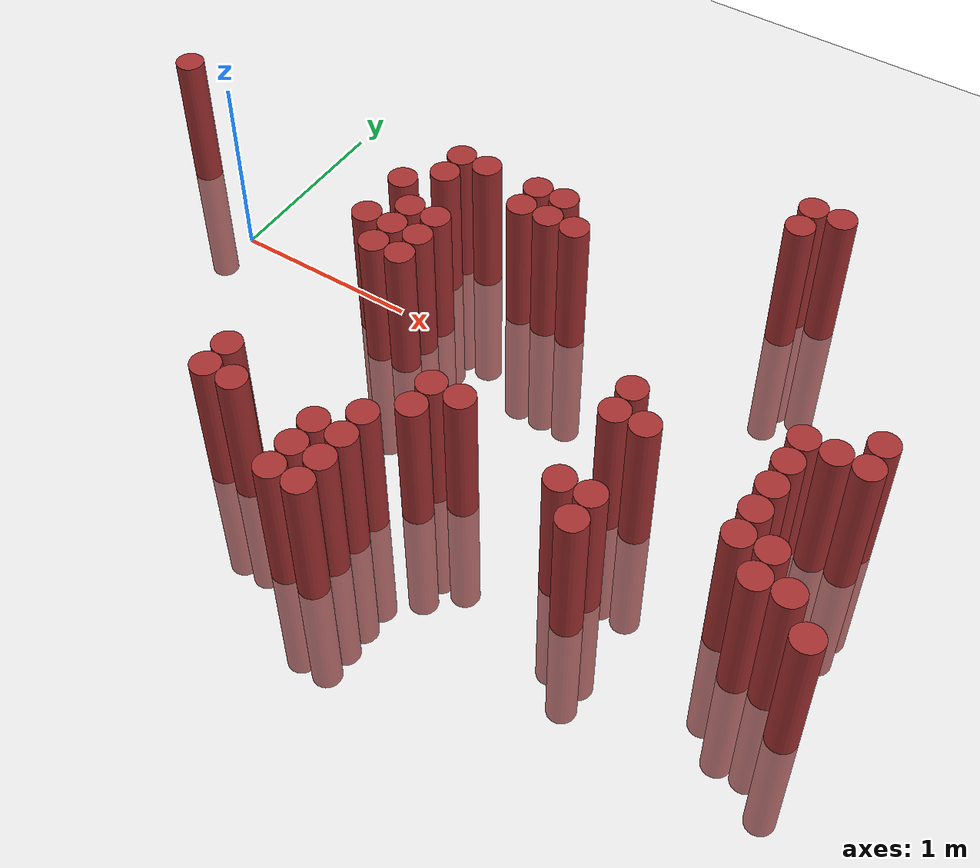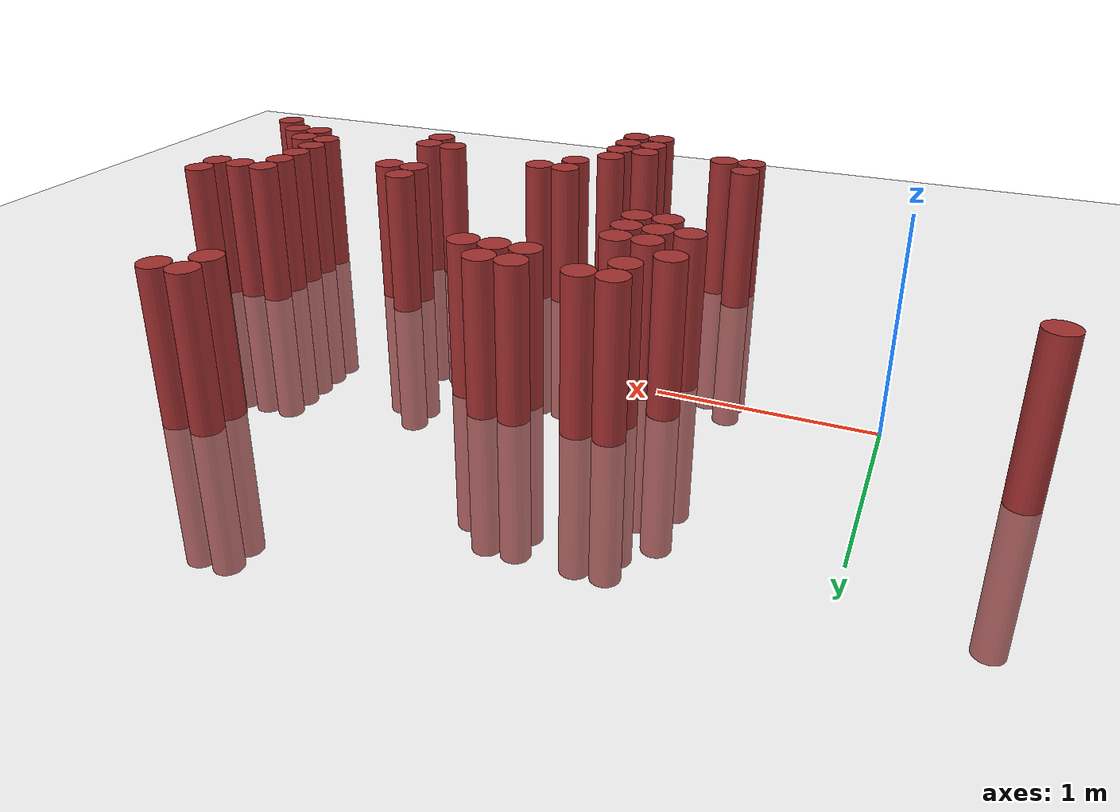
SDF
<sdf version="1.6">
 <world name="default">
  <model name="ground_plane">
   <static>1</static>
   <link name="link">
    <collision name="collision">
     <geometry><plane><normal>0 0 1</normal><size>100 100</size></plane></geometry>
     <surface><friction><ode><mu>100</mu><mu2>50</mu2></ode></friction></surface>
    </collision>
    <visual name="visual">
     <cast_shadows>0</cast_shadows>
     <geometry><plane><normal>0 0 1</normal><size>100 100</size></plane></geometry>
     <material>
      <script><uri>file://media/materials/scripts/gazebo.material</uri><name>Gazebo/Grey</name></script>
     </material>
    </visual>
   </link>
  </model>
  <model name="unit_cylinder_385">
   <static>1</static>
   <pose>-0.575000 0.325000 0.000000 0.000000 0.000000 0.000000</pose>
   <link name="link">
    <inertial>
     <mass>1</mass>
     <inertia><ixx>0.145833</ixx><ixy>0</ixy><ixz>0</ixz><iyy>0.145833</iyy><iyz>0</iyz><izz>0.125</izz></inertia>
    </inertial>
    <collision name="collision">
     <geometry><cylinder><radius>0.075000</radius><length>1.5</length></cylinder></geometry>
    </collision>
    <visual name="visual">
     <geometry><cylinder><radius>0.075000</radius><length>1.5</length></cylinder></geometry>
     <material>
      <ambient>0.648000 0.192000 0.192000 1</ambient>
      <diffuse>0.648000 0.192000 0.192000 1</diffuse>
     </material>
     <material>
      <script><name>Gazebo/Grey</name><uri>file://media/materials/scripts/gazebo.material</uri></script>
     </material>
    </visual>
   </link>
  </model>
  <model name="unit_cylinder_405">
   <static>1</static>
   <pose>0.925000 -1.325000 0.000000 0.000000 0.000000 0.000000</pose>
   <link name="link">
    <inertial>
     <mass>1</mass>
     <inertia><ixx>0.145833</ixx><ixy>0</ixy><ixz>0</ixz><iyy>0.145833</iyy><iyz>0</iyz><izz>0.125</izz></inertia>
    </inertial>
    <collision name="collision">
     <geometry><cylinder><radius>0.075000</radius><length>1.5</length></cylinder></geometry>
    </collision>
    <visual name="visual">
     <geometry><cylinder><radius>0.075000</radius><length>1.5</length></cylinder></geometry>
     <material>
      <ambient>0.648000 0.192000 0.192000 1</ambient>
      <diffuse>0.648000 0.192000 0.192000 1</diffuse>
     </material>
     <material>
      <script><name>Gazebo/Grey</name><uri>file://media/materials/scripts/gazebo.material</uri></script>
     </material>
    </visual>
   </link>
  </model>
  <model name="unit_cylinder_406">
   <static>1</static>
   <pose>0.925000 -1.175000 0.000000 0.000000 0.000000 0.000000</pose>
   <link name="link">
    <inertial>
     <mass>1</mass>
     <inertia><ixx>0.145833</ixx><ixy>0</ixy><ixz>0</ixz><iyy>0.145833</iyy><iyz>0</iyz><izz>0.125</izz></inertia>
    </inertial>
    <collision name="collision">
     <geometry><cylinder><radius>0.075000</radius><length>1.5</length></cylinder></geometry>
    </collision>
    <visual name="visual">
     <geometry><cylinder><radius>0.075000</radius><length>1.5</length></cylinder></geometry>
     <material>
      <ambient>0.648000 0.192000 0.192000 1</ambient>
      <diffuse>0.648000 0.192000 0.192000 1</diffuse>
     </material>
     <material>
      <script><name>Gazebo/Grey</name><uri>file://media/materials/scripts/gazebo.material</uri></script>
     </material>
    </visual>
   </link>
  </model>
  <model name="unit_cylinder_407">
   <static>1</static>
   <pose>0.925000 -0.125000 0.000000 0.000000 0.000000 0.000000</pose>
   <link name="link">
    <inertial>
     <mass>1</mass>
     <inertia><ixx>0.145833</ixx><ixy>0</ixy><ixz>0</ixz><iyy>0.145833</iyy><iyz>0</iyz><izz>0.125</izz></inertia>
    </inertial>
    <collision name="collision">
     <geometry><cylinder><radius>0.075000</radius><length>1.5</length></cylinder></geometry>
    </collision>
    <visual name="visual">
     <geometry><cylinder><radius>0.075000</radius><length>1.5</length></cylinder></geometry>
     <material>
      <ambient>0.648000 0.192000 0.192000 1</ambient>
      <diffuse>0.648000 0.192000 0.192000 1</diffuse>
     </material>
     <material>
      <script><name>Gazebo/Grey</name><uri>file://media/materials/scripts/gazebo.material</uri></script>
     </material>
    </visual>
   </link>
  </model>
  <model name="unit_cylinder_408">
   <static>1</static>
   <pose>0.925000 0.175000 0.000000 0.000000 0.000000 0.000000</pose>
   <link name="link">
    <inertial>
     <mass>1</mass>
     <inertia><ixx>0.145833</ixx><ixy>0</ixy><ixz>0</ixz><iyy>0.145833</iyy><iyz>0</iyz><izz>0.125</izz></inertia>
    </inertial>
    <collision name="collision">
     <geometry><cylinder><radius>0.075000</radius><length>1.5</length></cylinder></geometry>
    </collision>
    <visual name="visual">
     <geometry><cylinder><radius>0.075000</radius><length>1.5</length></cylinder></geometry>
     <material>
      <ambient>0.648000 0.192000 0.192000 1</ambient>
      <diffuse>0.648000 0.192000 0.192000 1</diffuse>
     </material>
     <material>
      <script><name>Gazebo/Grey</name><uri>file://media/materials/scripts/gazebo.material</uri></script>
     </material>
    </visual>
   </link>
  </model>
  <model name="unit_cylinder_420">
   <static>1</static>
   <pose>1.075000 -1.325000 0.000000 0.000000 0.000000 0.000000</pose>
   <link name="link">
    <inertial>
     <mass>1</mass>
     <inertia><ixx>0.145833</ixx><ixy>0</ixy><ixz>0</ixz><iyy>0.145833</iyy><iyz>0</iyz><izz>0.125</izz></inertia>
    </inertial>
    <collision name="collision">
     <geometry><cylinder><radius>0.075000</radius><length>1.5</length></cylinder></geometry>
    </collision>
    <visual name="visual">
     <geometry><cylinder><radius>0.075000</radius><length>1.5</length></cylinder></geometry>
     <material>
      <ambient>0.648000 0.192000 0.192000 1</ambient>
      <diffuse>0.648000 0.192000 0.192000 1</diffuse>
     </material>
     <material>
      <script><name>Gazebo/Grey</name><uri>file://media/materials/scripts/gazebo.material</uri></script>
     </material>
    </visual>
   </link>
  </model>
  <model name="unit_cylinder_421">
   <static>1</static>
   <pose>1.075000 -0.275000 0.000000 0.000000 0.000000 0.000000</pose>
   <link name="link">
    <inertial>
     <mass>1</mass>
     <inertia><ixx>0.145833</ixx><ixy>0</ixy><ixz>0</ixz><iyy>0.145833</iyy><iyz>0</iyz><izz>0.125</izz></inertia>
    </inertial>
    <collision name="collision">
     <geometry><cylinder><radius>0.075000</radius><length>1.5</length></cylinder></geometry>
    </collision>
    <visual name="visual">
     <geometry><cylinder><radius>0.075000</radius><length>1.5</length></cylinder></geometry>
     <material>
      <ambient>0.648000 0.192000 0.192000 1</ambient>
      <diffuse>0.648000 0.192000 0.192000 1</diffuse>
     </material>
     <material>
      <script><name>Gazebo/Grey</name><uri>file://media/materials/scripts/gazebo.material</uri></script>
     </material>
    </visual>
   </link>
  </model>
  <model name="unit_cylinder_422">
   <static>1</static>
   <pose>1.075000 -0.125000 0.000000 0.000000 0.000000 0.000000</pose>
   <link name="link">
    <inertial>
     <mass>1</mass>
     <inertia><ixx>0.145833</ixx><ixy>0</ixy><ixz>0</ixz><iyy>0.145833</iyy><iyz>0</iyz><izz>0.125</izz></inertia>
    </inertial>
    <collision name="collision">
     <geometry><cylinder><radius>0.075000</radius><length>1.5</length></cylinder></geometry>
    </collision>
    <visual name="visual">
     <geometry><cylinder><radius>0.075000</radius><length>1.5</length></cylinder></geometry>
     <material>
      <ambient>0.648000 0.192000 0.192000 1</ambient>
      <diffuse>0.648000 0.192000 0.192000 1</diffuse>
     </material>
     <material>
      <script><name>Gazebo/Grey</name><uri>file://media/materials/scripts/gazebo.material</uri></script>
     </material>
    </visual>
   </link>
  </model>
  <model name="unit_cylinder_423">
   <static>1</static>
   <pose>1.075000 0.025000 0.000000 0.000000 0.000000 0.000000</pose>
   <link name="link">
    <inertial>
     <mass>1</mass>
     <inertia><ixx>0.145833</ixx><ixy>0</ixy><ixz>0</ixz><iyy>0.145833</iyy><iyz>0</iyz><izz>0.125</izz></inertia>
    </inertial>
    <collision name="collision">
     <geometry><cylinder><radius>0.075000</radius><length>1.5</length></cylinder></geometry>
    </collision>
    <visual name="visual">
     <geometry><cylinder><radius>0.075000</radius><length>1.5</length></cylinder></geometry>
     <material>
      <ambient>0.648000 0.192000 0.192000 1</ambient>
      <diffuse>0.648000 0.192000 0.192000 1</diffuse>
     </material>
     <material>
      <script><name>Gazebo/Grey</name><uri>file://media/materials/scripts/gazebo.material</uri></script>
     </material>
    </visual>
   </link>
  </model>
  <model name="unit_cylinder_424">
   <static>1</static>
   <pose>1.075000 0.325000 0.000000 0.000000 0.000000 0.000000</pose>
   <link name="link">
    <inertial>
     <mass>1</mass>
     <inertia><ixx>0.145833</ixx><ixy>0</ixy><ixz>0</ixz><iyy>0.145833</iyy><iyz>0</iyz><izz>0.125</izz></inertia>
    </inertial>
    <collision name="collision">
     <geometry><cylinder><radius>0.075000</radius><length>1.5</length></cylinder></geometry>
    </collision>
    <visual name="visual">
     <geometry><cylinder><radius>0.075000</radius><length>1.5</length></cylinder></geometry>
     <material>
      <ambient>0.648000 0.192000 0.192000 1</ambient>
      <diffuse>0.648000 0.192000 0.192000 1</diffuse>
     </material>
     <material>
      <script><name>Gazebo/Grey</name><uri>file://media/materials/scripts/gazebo.material</uri></script>
     </material>
    </visual>
   </link>
  </model>
  <model name="unit_cylinder_425">
   <static>1</static>
   <pose>1.075000 0.475000 0.000000 0.000000 0.000000 0.000000</pose>
   <link name="link">
    <inertial>
     <mass>1</mass>
     <inertia><ixx>0.145833</ixx><ixy>0</ixy><ixz>0</ixz><iyy>0.145833</iyy><iyz>0</iyz><izz>0.125</izz></inertia>
    </inertial>
    <collision name="collision">
     <geometry><cylinder><radius>0.075000</radius><length>1.5</length></cylinder></geometry>
    </collision>
    <visual name="visual">
     <geometry><cylinder><radius>0.075000</radius><length>1.5</length></cylinder></geometry>
     <material>
      <ambient>0.648000 0.192000 0.192000 1</ambient>
      <diffuse>0.648000 0.192000 0.192000 1</diffuse>
     </material>
     <material>
      <script><name>Gazebo/Grey</name><uri>file://media/materials/scripts/gazebo.material</uri></script>
     </material>
    </visual>
   </link>
  </model>
  <model name="unit_cylinder_434">
   <static>1</static>
   <pose>1.225000 -0.275000 0.000000 0.000000 0.000000 0.000000</pose>
   <link name="link">
    <inertial>
     <mass>1</mass>
     <inertia><ixx>0.145833</ixx><ixy>0</ixy><ixz>0</ixz><iyy>0.145833</iyy><iyz>0</iyz><izz>0.125</izz></inertia>
    </inertial>
    <collision name="collision">
     <geometry><cylinder><radius>0.075000</radius><length>1.5</length></cylinder></geometry>
    </collision>
    <visual name="visual">
     <geometry><cylinder><radius>0.075000</radius><length>1.5</length></cylinder></geometry>
     <material>
      <ambient>0.648000 0.192000 0.192000 1</ambient>
      <diffuse>0.648000 0.192000 0.192000 1</diffuse>
     </material>
     <material>
      <script><name>Gazebo/Grey</name><uri>file://media/materials/scripts/gazebo.material</uri></script>
     </material>
    </visual>
   </link>
  </model>
  <model name="unit_cylinder_435">
   <static>1</static>
   <pose>1.225000 -0.125000 0.000000 0.000000 0.000000 0.000000</pose>
   <link name="link">
    <inertial>
     <mass>1</mass>
     <inertia><ixx>0.145833</ixx><ixy>0</ixy><ixz>0</ixz><iyy>0.145833</iyy><iyz>0</iyz><izz>0.125</izz></inertia>
    </inertial>
    <collision name="collision">
     <geometry><cylinder><radius>0.075000</radius><length>1.5</length></cylinder></geometry>
    </collision>
    <visual name="visual">
     <geometry><cylinder><radius>0.075000</radius><length>1.5</length></cylinder></geometry>
     <material>
      <ambient>0.648000 0.192000 0.192000 1</ambient>
      <diffuse>0.648000 0.192000 0.192000 1</diffuse>
     </material>
     <material>
      <script><name>Gazebo/Grey</name><uri>file://media/materials/scripts/gazebo.material</uri></script>
     </material>
    </visual>
   </link>
  </model>
  <model name="unit_cylinder_436">
   <static>1</static>
   <pose>1.225000 0.025000 0.000000 0.000000 0.000000 0.000000</pose>
   <link name="link">
    <inertial>
     <mass>1</mass>
     <inertia><ixx>0.145833</ixx><ixy>0</ixy><ixz>0</ixz><iyy>0.145833</iyy><iyz>0</iyz><izz>0.125</izz></inertia>
    </inertial>
    <collision name="collision">
     <geometry><cylinder><radius>0.075000</radius><length>1.5</length></cylinder></geometry>
    </collision>
    <visual name="visual">
     <geometry><cylinder><radius>0.075000</radius><length>1.5</length></cylinder></geometry>
     <material>
      <ambient>0.648000 0.192000 0.192000 1</ambient>
      <diffuse>0.648000 0.192000 0.192000 1</diffuse>
     </material>
     <material>
      <script><name>Gazebo/Grey</name><uri>file://media/materials/scripts/gazebo.material</uri></script>
     </material>
    </visual>
   </link>
  </model>
  <model name="unit_cylinder_437">
   <static>1</static>
   <pose>1.225000 0.475000 0.000000 0.000000 0.000000 0.000000</pose>
   <link name="link">
    <inertial>
     <mass>1</mass>
     <inertia><ixx>0.145833</ixx><ixy>0</ixy><ixz>0</ixz><iyy>0.145833</iyy><iyz>0</iyz><izz>0.125</izz></inertia>
    </inertial>
    <collision name="collision">
     <geometry><cylinder><radius>0.075000</radius><length>1.5</length></cylinder></geometry>
    </collision>
    <visual name="visual">
     <geometry><cylinder><radius>0.075000</radius><length>1.5</length></cylinder></geometry>
     <material>
      <ambient>0.648000 0.192000 0.192000 1</ambient>
      <diffuse>0.648000 0.192000 0.192000 1</diffuse>
     </material>
     <material>
      <script><name>Gazebo/Grey</name><uri>file://media/materials/scripts/gazebo.material</uri></script>
     </material>
    </visual>
   </link>
  </model>
  <model name="unit_cylinder_440">
   <static>1</static>
   <pose>1.525000 -1.625000 0.000000 0.000000 0.000000 0.000000</pose>
   <link name="link">
    <inertial>
     <mass>1</mass>
     <inertia><ixx>0.145833</ixx><ixy>0</ixy><ixz>0</ixz><iyy>0.145833</iyy><iyz>0</iyz><izz>0.125</izz></inertia>
    </inertial>
    <collision name="collision">
     <geometry><cylinder><radius>0.075000</radius><length>1.5</length></cylinder></geometry>
    </collision>
    <visual name="visual">
     <geometry><cylinder><radius>0.075000</radius><length>1.5</length></cylinder></geometry>
     <material>
      <ambient>0.648000 0.192000 0.192000 1</ambient>
      <diffuse>0.648000 0.192000 0.192000 1</diffuse>
     </material>
     <material>
      <script><name>Gazebo/Grey</name><uri>file://media/materials/scripts/gazebo.material</uri></script>
     </material>
    </visual>
   </link>
  </model>
  <model name="unit_cylinder_441">
   <static>1</static>
   <pose>1.525000 -1.475000 0.000000 0.000000 0.000000 0.000000</pose>
   <link name="link">
    <inertial>
     <mass>1</mass>
     <inertia><ixx>0.145833</ixx><ixy>0</ixy><ixz>0</ixz><iyy>0.145833</iyy><iyz>0</iyz><izz>0.125</izz></inertia>
    </inertial>
    <collision name="collision">
     <geometry><cylinder><radius>0.075000</radius><length>1.5</length></cylinder></geometry>
    </collision>
    <visual name="visual">
     <geometry><cylinder><radius>0.075000</radius><length>1.5</length></cylinder></geometry>
     <material>
      <ambient>0.648000 0.192000 0.192000 1</ambient>
      <diffuse>0.648000 0.192000 0.192000 1</diffuse>
     </material>
     <material>
      <script><name>Gazebo/Grey</name><uri>file://media/materials/scripts/gazebo.material</uri></script>
     </material>
    </visual>
   </link>
  </model>
  <model name="unit_cylinder_442">
   <static>1</static>
   <pose>1.525000 -1.325000 0.000000 0.000000 0.000000 0.000000</pose>
   <link name="link">
    <inertial>
     <mass>1</mass>
     <inertia><ixx>0.145833</ixx><ixy>0</ixy><ixz>0</ixz><iyy>0.145833</iyy><iyz>0</iyz><izz>0.125</izz></inertia>
    </inertial>
    <collision name="collision">
     <geometry><cylinder><radius>0.075000</radius><length>1.5</length></cylinder></geometry>
    </collision>
    <visual name="visual">
     <geometry><cylinder><radius>0.075000</radius><length>1.5</length></cylinder></geometry>
     <material>
      <ambient>0.648000 0.192000 0.192000 1</ambient>
      <diffuse>0.648000 0.192000 0.192000 1</diffuse>
     </material>
     <material>
      <script><name>Gazebo/Grey</name><uri>file://media/materials/scripts/gazebo.material</uri></script>
     </material>
    </visual>
   </link>
  </model>
  <model name="unit_cylinder_443">
   <static>1</static>
   <pose>1.525000 0.325000 0.000000 0.000000 0.000000 0.000000</pose>
   <link name="link">
    <inertial>
     <mass>1</mass>
     <inertia><ixx>0.145833</ixx><ixy>0</ixy><ixz>0</ixz><iyy>0.145833</iyy><iyz>0</iyz><izz>0.125</izz></inertia>
    </inertial>
    <collision name="collision">
     <geometry><cylinder><radius>0.075000</radius><length>1.5</length></cylinder></geometry>
    </collision>
    <visual name="visual">
     <geometry><cylinder><radius>0.075000</radius><length>1.5</length></cylinder></geometry>
     <material>
      <ambient>0.648000 0.192000 0.192000 1</ambient>
      <diffuse>0.648000 0.192000 0.192000 1</diffuse>
     </material>
     <material>
      <script><name>Gazebo/Grey</name><uri>file://media/materials/scripts/gazebo.material</uri></script>
     </material>
    </visual>
   </link>
  </model>
  <model name="unit_cylinder_444">
   <static>1</static>
   <pose>1.525000 0.475000 0.000000 0.000000 0.000000 0.000000</pose>
   <link name="link">
    <inertial>
     <mass>1</mass>
     <inertia><ixx>0.145833</ixx><ixy>0</ixy><ixz>0</ixz><iyy>0.145833</iyy><iyz>0</iyz><izz>0.125</izz></inertia>
    </inertial>
    <collision name="collision">
     <geometry><cylinder><radius>0.075000</radius><length>1.5</length></cylinder></geometry>
    </collision>
    <visual name="visual">
     <geometry><cylinder><radius>0.075000</radius><length>1.5</length></cylinder></geometry>
     <material>
      <ambient>0.648000 0.192000 0.192000 1</ambient>
      <diffuse>0.648000 0.192000 0.192000 1</diffuse>
     </material>
     <material>
      <script><name>Gazebo/Grey</name><uri>file://media/materials/scripts/gazebo.material</uri></script>
     </material>
    </visual>
   </link>
  </model>
  <model name="unit_cylinder_447">
   <static>1</static>
   <pose>1.675000 -1.625000 0.000000 0.000000 0.000000 0.000000</pose>
   <link name="link">
    <inertial>
     <mass>1</mass>
     <inertia><ixx>0.145833</ixx><ixy>0</ixy><ixz>0</ixz><iyy>0.145833</iyy><iyz>0</iyz><izz>0.125</izz></inertia>
    </inertial>
    <collision name="collision">
     <geometry><cylinder><radius>0.075000</radius><length>1.5</length></cylinder></geometry>
    </collision>
    <visual name="visual">
     <geometry><cylinder><radius>0.075000</radius><length>1.5</length></cylinder></geometry>
     <material>
      <ambient>0.648000 0.192000 0.192000 1</ambient>
      <diffuse>0.648000 0.192000 0.192000 1</diffuse>
     </material>
     <material>
      <script><name>Gazebo/Grey</name><uri>file://media/materials/scripts/gazebo.material</uri></script>
     </material>
    </visual>
   </link>
  </model>
  <model name="unit_cylinder_448">
   <static>1</static>
   <pose>1.675000 -1.475000 0.000000 0.000000 0.000000 0.000000</pose>
   <link name="link">
    <inertial>
     <mass>1</mass>
     <inertia><ixx>0.145833</ixx><ixy>0</ixy><ixz>0</ixz><iyy>0.145833</iyy><iyz>0</iyz><izz>0.125</izz></inertia>
    </inertial>
    <collision name="collision">
     <geometry><cylinder><radius>0.075000</radius><length>1.5</length></cylinder></geometry>
    </collision>
    <visual name="visual">
     <geometry><cylinder><radius>0.075000</radius><length>1.5</length></cylinder></geometry>
     <material>
      <ambient>0.648000 0.192000 0.192000 1</ambient>
      <diffuse>0.648000 0.192000 0.192000 1</diffuse>
     </material>
     <material>
      <script><name>Gazebo/Grey</name><uri>file://media/materials/scripts/gazebo.material</uri></script>
     </material>
    </visual>
   </link>
  </model>
  <model name="unit_cylinder_449">
   <static>1</static>
   <pose>1.675000 -1.325000 0.000000 0.000000 0.000000 0.000000</pose>
   <link name="link">
    <inertial>
     <mass>1</mass>
     <inertia><ixx>0.145833</ixx><ixy>0</ixy><ixz>0</ixz><iyy>0.145833</iyy><iyz>0</iyz><izz>0.125</izz></inertia>
    </inertial>
    <collision name="collision">
     <geometry><cylinder><radius>0.075000</radius><length>1.5</length></cylinder></geometry>
    </collision>
    <visual name="visual">
     <geometry><cylinder><radius>0.075000</radius><length>1.5</length></cylinder></geometry>
     <material>
      <ambient>0.648000 0.192000 0.192000 1</ambient>
      <diffuse>0.648000 0.192000 0.192000 1</diffuse>
     </material>
     <material>
      <script><name>Gazebo/Grey</name><uri>file://media/materials/scripts/gazebo.material</uri></script>
     </material>
    </visual>
   </link>
  </model>
  <model name="unit_cylinder_450">
   <static>1</static>
   <pose>1.675000 -1.175000 0.000000 0.000000 0.000000 0.000000</pose>
   <link name="link">
    <inertial>
     <mass>1</mass>
     <inertia><ixx>0.145833</ixx><ixy>0</ixy><ixz>0</ixz><iyy>0.145833</iyy><iyz>0</iyz><izz>0.125</izz></inertia>
    </inertial>
    <collision name="collision">
     <geometry><cylinder><radius>0.075000</radius><length>1.5</length></cylinder></geometry>
    </collision>
    <visual name="visual">
     <geometry><cylinder><radius>0.075000</radius><length>1.5</length></cylinder></geometry>
     <material>
      <ambient>0.648000 0.192000 0.192000 1</ambient>
      <diffuse>0.648000 0.192000 0.192000 1</diffuse>
     </material>
     <material>
      <script><name>Gazebo/Grey</name><uri>file://media/materials/scripts/gazebo.material</uri></script>
     </material>
    </visual>
   </link>
  </model>
  <model name="unit_cylinder_451">
   <static>1</static>
   <pose>1.675000 0.325000 0.000000 0.000000 0.000000 0.000000</pose>
   <link name="link">
    <inertial>
     <mass>1</mass>
     <inertia><ixx>0.145833</ixx><ixy>0</ixy><ixz>0</ixz><iyy>0.145833</iyy><iyz>0</iyz><izz>0.125</izz></inertia>
    </inertial>
    <collision name="collision">
     <geometry><cylinder><radius>0.075000</radius><length>1.5</length></cylinder></geometry>
    </collision>
    <visual name="visual">
     <geometry><cylinder><radius>0.075000</radius><length>1.5</length></cylinder></geometry>
     <material>
      <ambient>0.648000 0.192000 0.192000 1</ambient>
      <diffuse>0.648000 0.192000 0.192000 1</diffuse>
     </material>
     <material>
      <script><name>Gazebo/Grey</name><uri>file://media/materials/scripts/gazebo.material</uri></script>
     </material>
    </visual>
   </link>
  </model>
  <model name="unit_cylinder_452">
   <static>1</static>
   <pose>1.675000 0.475000 0.000000 0.000000 0.000000 0.000000</pose>
   <link name="link">
    <inertial>
     <mass>1</mass>
     <inertia><ixx>0.145833</ixx><ixy>0</ixy><ixz>0</ixz><iyy>0.145833</iyy><iyz>0</iyz><izz>0.125</izz></inertia>
    </inertial>
    <collision name="collision">
     <geometry><cylinder><radius>0.075000</radius><length>1.5</length></cylinder></geometry>
    </collision>
    <visual name="visual">
     <geometry><cylinder><radius>0.075000</radius><length>1.5</length></cylinder></geometry>
     <material>
      <ambient>0.648000 0.192000 0.192000 1</ambient>
      <diffuse>0.648000 0.192000 0.192000 1</diffuse>
     </material>
     <material>
      <script><name>Gazebo/Grey</name><uri>file://media/materials/scripts/gazebo.material</uri></script>
     </material>
    </visual>
   </link>
  </model>
  <model name="unit_cylinder_457">
   <static>1</static>
   <pose>1.825000 -1.025000 0.000000 0.000000 0.000000 0.000000</pose>
   <link name="link">
    <inertial>
     <mass>1</mass>
     <inertia><ixx>0.145833</ixx><ixy>0</ixy><ixz>0</ixz><iyy>0.145833</iyy><iyz>0</iyz><izz>0.125</izz></inertia>
    </inertial>
    <collision name="collision">
     <geometry><cylinder><radius>0.075000</radius><length>1.5</length></cylinder></geometry>
    </collision>
    <visual name="visual">
     <geometry><cylinder><radius>0.075000</radius><length>1.5</length></cylinder></geometry>
     <material>
      <ambient>0.648000 0.192000 0.192000 1</ambient>
      <diffuse>0.648000 0.192000 0.192000 1</diffuse>
     </material>
     <material>
      <script><name>Gazebo/Grey</name><uri>file://media/materials/scripts/gazebo.material</uri></script>
     </material>
    </visual>
   </link>
  </model>
  <model name="unit_cylinder_458">
   <static>1</static>
   <pose>1.825000 -0.875000 0.000000 0.000000 0.000000 0.000000</pose>
   <link name="link">
    <inertial>
     <mass>1</mass>
     <inertia><ixx>0.145833</ixx><ixy>0</ixy><ixz>0</ixz><iyy>0.145833</iyy><iyz>0</iyz><izz>0.125</izz></inertia>
    </inertial>
    <collision name="collision">
     <geometry><cylinder><radius>0.075000</radius><length>1.5</length></cylinder></geometry>
    </collision>
    <visual name="visual">
     <geometry><cylinder><radius>0.075000</radius><length>1.5</length></cylinder></geometry>
     <material>
      <ambient>0.648000 0.192000 0.192000 1</ambient>
      <diffuse>0.648000 0.192000 0.192000 1</diffuse>
     </material>
     <material>
      <script><name>Gazebo/Grey</name><uri>file://media/materials/scripts/gazebo.material</uri></script>
     </material>
    </visual>
   </link>
  </model>
  <model name="unit_cylinder_459">
   <static>1</static>
   <pose>1.825000 0.325000 0.000000 0.000000 0.000000 0.000000</pose>
   <link name="link">
    <inertial>
     <mass>1</mass>
     <inertia><ixx>0.145833</ixx><ixy>0</ixy><ixz>0</ixz><iyy>0.145833</iyy><iyz>0</iyz><izz>0.125</izz></inertia>
    </inertial>
    <collision name="collision">
     <geometry><cylinder><radius>0.075000</radius><length>1.5</length></cylinder></geometry>
    </collision>
    <visual name="visual">
     <geometry><cylinder><radius>0.075000</radius><length>1.5</length></cylinder></geometry>
     <material>
      <ambient>0.648000 0.192000 0.192000 1</ambient>
      <diffuse>0.648000 0.192000 0.192000 1</diffuse>
     </material>
     <material>
      <script><name>Gazebo/Grey</name><uri>file://media/materials/scripts/gazebo.material</uri></script>
     </material>
    </visual>
   </link>
  </model>
  <model name="unit_cylinder_465">
   <static>1</static>
   <pose>1.975000 -0.875000 0.000000 0.000000 0.000000 0.000000</pose>
   <link name="link">
    <inertial>
     <mass>1</mass>
     <inertia><ixx>0.145833</ixx><ixy>0</ixy><ixz>0</ixz><iyy>0.145833</iyy><iyz>0</iyz><izz>0.125</izz></inertia>
    </inertial>
    <collision name="collision">
     <geometry><cylinder><radius>0.075000</radius><length>1.5</length></cylinder></geometry>
    </collision>
    <visual name="visual">
     <geometry><cylinder><radius>0.075000</radius><length>1.5</length></cylinder></geometry>
     <material>
      <ambient>0.648000 0.192000 0.192000 1</ambient>
      <diffuse>0.648000 0.192000 0.192000 1</diffuse>
     </material>
     <material>
      <script><name>Gazebo/Grey</name><uri>file://media/materials/scripts/gazebo.material</uri></script>
     </material>
    </visual>
   </link>
  </model>
  <model name="unit_cylinder_475">
   <static>1</static>
   <pose>2.575000 -1.025000 0.000000 0.000000 0.000000 0.000000</pose>
   <link name="link">
    <inertial>
     <mass>1</mass>
     <inertia><ixx>0.145833</ixx><ixy>0</ixy><ixz>0</ixz><iyy>0.145833</iyy><iyz>0</iyz><izz>0.125</izz></inertia>
    </inertial>
    <collision name="collision">
     <geometry><cylinder><radius>0.075000</radius><length>1.5</length></cylinder></geometry>
    </collision>
    <visual name="visual">
     <geometry><cylinder><radius>0.075000</radius><length>1.5</length></cylinder></geometry>
     <material>
      <ambient>0.648000 0.192000 0.192000 1</ambient>
      <diffuse>0.648000 0.192000 0.192000 1</diffuse>
     </material>
     <material>
      <script><name>Gazebo/Grey</name><uri>file://media/materials/scripts/gazebo.material</uri></script>
     </material>
    </visual>
   </link>
  </model>
  <model name="unit_cylinder_476">
   <static>1</static>
   <pose>2.575000 -0.575000 0.000000 0.000000 0.000000 0.000000</pose>
   <link name="link">
    <inertial>
     <mass>1</mass>
     <inertia><ixx>0.145833</ixx><ixy>0</ixy><ixz>0</ixz><iyy>0.145833</iyy><iyz>0</iyz><izz>0.125</izz></inertia>
    </inertial>
    <collision name="collision">
     <geometry><cylinder><radius>0.075000</radius><length>1.5</length></cylinder></geometry>
    </collision>
    <visual name="visual">
     <geometry><cylinder><radius>0.075000</radius><length>1.5</length></cylinder></geometry>
     <material>
      <ambient>0.648000 0.192000 0.192000 1</ambient>
      <diffuse>0.648000 0.192000 0.192000 1</diffuse>
     </material>
     <material>
      <script><name>Gazebo/Grey</name><uri>file://media/materials/scripts/gazebo.material</uri></script>
     </material>
    </visual>
   </link>
  </model>
  <model name="unit_cylinder_477">
   <static>1</static>
   <pose>2.575000 -0.425000 0.000000 0.000000 0.000000 0.000000</pose>
   <link name="link">
    <inertial>
     <mass>1</mass>
     <inertia><ixx>0.145833</ixx><ixy>0</ixy><ixz>0</ixz><iyy>0.145833</iyy><iyz>0</iyz><izz>0.125</izz></inertia>
    </inertial>
    <collision name="collision">
     <geometry><cylinder><radius>0.075000</radius><length>1.5</length></cylinder></geometry>
    </collision>
    <visual name="visual">
     <geometry><cylinder><radius>0.075000</radius><length>1.5</length></cylinder></geometry>
     <material>
      <ambient>0.648000 0.192000 0.192000 1</ambient>
      <diffuse>0.648000 0.192000 0.192000 1</diffuse>
     </material>
     <material>
      <script><name>Gazebo/Grey</name><uri>file://media/materials/scripts/gazebo.material</uri></script>
     </material>
    </visual>
   </link>
  </model>
  <model name="unit_cylinder_480">
   <static>1</static>
   <pose>2.725000 -1.175000 0.000000 0.000000 0.000000 0.000000</pose>
   <link name="link">
    <inertial>
     <mass>1</mass>
     <inertia><ixx>0.145833</ixx><ixy>0</ixy><ixz>0</ixz><iyy>0.145833</iyy><iyz>0</iyz><izz>0.125</izz></inertia>
    </inertial>
    <collision name="collision">
     <geometry><cylinder><radius>0.075000</radius><length>1.5</length></cylinder></geometry>
    </collision>
    <visual name="visual">
     <geometry><cylinder><radius>0.075000</radius><length>1.5</length></cylinder></geometry>
     <material>
      <ambient>0.648000 0.192000 0.192000 1</ambient>
      <diffuse>0.648000 0.192000 0.192000 1</diffuse>
     </material>
     <material>
      <script><name>Gazebo/Grey</name><uri>file://media/materials/scripts/gazebo.material</uri></script>
     </material>
    </visual>
   </link>
  </model>
  <model name="unit_cylinder_481">
   <static>1</static>
   <pose>2.725000 -1.025000 0.000000 0.000000 0.000000 0.000000</pose>
   <link name="link">
    <inertial>
     <mass>1</mass>
     <inertia><ixx>0.145833</ixx><ixy>0</ixy><ixz>0</ixz><iyy>0.145833</iyy><iyz>0</iyz><izz>0.125</izz></inertia>
    </inertial>
    <collision name="collision">
     <geometry><cylinder><radius>0.075000</radius><length>1.5</length></cylinder></geometry>
    </collision>
    <visual name="visual">
     <geometry><cylinder><radius>0.075000</radius><length>1.5</length></cylinder></geometry>
     <material>
      <ambient>0.648000 0.192000 0.192000 1</ambient>
      <diffuse>0.648000 0.192000 0.192000 1</diffuse>
     </material>
     <material>
      <script><name>Gazebo/Grey</name><uri>file://media/materials/scripts/gazebo.material</uri></script>
     </material>
    </visual>
   </link>
  </model>
  <model name="unit_cylinder_482">
   <static>1</static>
   <pose>2.725000 -0.575000 0.000000 0.000000 0.000000 0.000000</pose>
   <link name="link">
    <inertial>
     <mass>1</mass>
     <inertia><ixx>0.145833</ixx><ixy>0</ixy><ixz>0</ixz><iyy>0.145833</iyy><iyz>0</iyz><izz>0.125</izz></inertia>
    </inertial>
    <collision name="collision">
     <geometry><cylinder><radius>0.075000</radius><length>1.5</length></cylinder></geometry>
    </collision>
    <visual name="visual">
     <geometry><cylinder><radius>0.075000</radius><length>1.5</length></cylinder></geometry>
     <material>
      <ambient>0.648000 0.192000 0.192000 1</ambient>
      <diffuse>0.648000 0.192000 0.192000 1</diffuse>
     </material>
     <material>
      <script><name>Gazebo/Grey</name><uri>file://media/materials/scripts/gazebo.material</uri></script>
     </material>
    </visual>
   </link>
  </model>
  <model name="unit_cylinder_483">
   <static>1</static>
   <pose>2.725000 0.925000 0.000000 0.000000 0.000000 0.000000</pose>
   <link name="link">
    <inertial>
     <mass>1</mass>
     <inertia><ixx>0.145833</ixx><ixy>0</ixy><ixz>0</ixz><iyy>0.145833</iyy><iyz>0</iyz><izz>0.125</izz></inertia>
    </inertial>
    <collision name="collision">
     <geometry><cylinder><radius>0.075000</radius><length>1.5</length></cylinder></geometry>
    </collision>
    <visual name="visual">
     <geometry><cylinder><radius>0.075000</radius><length>1.5</length></cylinder></geometry>
     <material>
      <ambient>0.648000 0.192000 0.192000 1</ambient>
      <diffuse>0.648000 0.192000 0.192000 1</diffuse>
     </material>
     <material>
      <script><name>Gazebo/Grey</name><uri>file://media/materials/scripts/gazebo.material</uri></script>
     </material>
    </visual>
   </link>
  </model>
  <model name="unit_cylinder_484">
   <static>1</static>
   <pose>2.725000 1.075000 0.000000 0.000000 0.000000 0.000000</pose>
   <link name="link">
    <inertial>
     <mass>1</mass>
     <inertia><ixx>0.145833</ixx><ixy>0</ixy><ixz>0</ixz><iyy>0.145833</iyy><iyz>0</iyz><izz>0.125</izz></inertia>
    </inertial>
    <collision name="collision">
     <geometry><cylinder><radius>0.075000</radius><length>1.5</length></cylinder></geometry>
    </collision>
    <visual name="visual">
     <geometry><cylinder><radius>0.075000</radius><length>1.5</length></cylinder></geometry>
     <material>
      <ambient>0.648000 0.192000 0.192000 1</ambient>
      <diffuse>0.648000 0.192000 0.192000 1</diffuse>
     </material>
     <material>
      <script><name>Gazebo/Grey</name><uri>file://media/materials/scripts/gazebo.material</uri></script>
     </material>
    </visual>
   </link>
  </model>
  <model name="unit_cylinder_486">
   <static>1</static>
   <pose>2.875000 1.075000 0.000000 0.000000 0.000000 0.000000</pose>
   <link name="link">
    <inertial>
     <mass>1</mass>
     <inertia><ixx>0.145833</ixx><ixy>0</ixy><ixz>0</ixz><iyy>0.145833</iyy><iyz>0</iyz><izz>0.125</izz></inertia>
    </inertial>
    <collision name="collision">
     <geometry><cylinder><radius>0.075000</radius><length>1.5</length></cylinder></geometry>
    </collision>
    <visual name="visual">
     <geometry><cylinder><radius>0.075000</radius><length>1.5</length></cylinder></geometry>
     <material>
      <ambient>0.648000 0.192000 0.192000 1</ambient>
      <diffuse>0.648000 0.192000 0.192000 1</diffuse>
     </material>
     <material>
      <script><name>Gazebo/Grey</name><uri>file://media/materials/scripts/gazebo.material</uri></script>
     </material>
    </visual>
   </link>
  </model>
  <model name="unit_cylinder_508">
   <static>1</static>
   <pose>3.325000 -0.875000 0.000000 0.000000 0.000000 0.000000</pose>
   <link name="link">
    <inertial>
     <mass>1</mass>
     <inertia><ixx>0.145833</ixx><ixy>0</ixy><ixz>0</ixz><iyy>0.145833</iyy><iyz>0</iyz><izz>0.125</izz></inertia>
    </inertial>
    <collision name="collision">
     <geometry><cylinder><radius>0.075000</radius><length>1.5</length></cylinder></geometry>
    </collision>
    <visual name="visual">
     <geometry><cylinder><radius>0.075000</radius><length>1.5</length></cylinder></geometry>
     <material>
      <ambient>0.648000 0.192000 0.192000 1</ambient>
      <diffuse>0.648000 0.192000 0.192000 1</diffuse>
     </material>
     <material>
      <script><name>Gazebo/Grey</name><uri>file://media/materials/scripts/gazebo.material</uri></script>
     </material>
    </visual>
   </link>
  </model>
  <model name="unit_cylinder_509">
   <static>1</static>
   <pose>3.325000 -0.725000 0.000000 0.000000 0.000000 0.000000</pose>
   <link name="link">
    <inertial>
     <mass>1</mass>
     <inertia><ixx>0.145833</ixx><ixy>0</ixy><ixz>0</ixz><iyy>0.145833</iyy><iyz>0</iyz><izz>0.125</izz></inertia>
    </inertial>
    <collision name="collision">
     <geometry><cylinder><radius>0.075000</radius><length>1.5</length></cylinder></geometry>
    </collision>
    <visual name="visual">
     <geometry><cylinder><radius>0.075000</radius><length>1.5</length></cylinder></geometry>
     <material>
      <ambient>0.648000 0.192000 0.192000 1</ambient>
      <diffuse>0.648000 0.192000 0.192000 1</diffuse>
     </material>
     <material>
      <script><name>Gazebo/Grey</name><uri>file://media/materials/scripts/gazebo.material</uri></script>
     </material>
    </visual>
   </link>
  </model>
  <model name="unit_cylinder_510">
   <static>1</static>
   <pose>3.325000 -0.575000 0.000000 0.000000 0.000000 0.000000</pose>
   <link name="link">
    <inertial>
     <mass>1</mass>
     <inertia><ixx>0.145833</ixx><ixy>0</ixy><ixz>0</ixz><iyy>0.145833</iyy><iyz>0</iyz><izz>0.125</izz></inertia>
    </inertial>
    <collision name="collision">
     <geometry><cylinder><radius>0.075000</radius><length>1.5</length></cylinder></geometry>
    </collision>
    <visual name="visual">
     <geometry><cylinder><radius>0.075000</radius><length>1.5</length></cylinder></geometry>
     <material>
      <ambient>0.648000 0.192000 0.192000 1</ambient>
      <diffuse>0.648000 0.192000 0.192000 1</diffuse>
     </material>
     <material>
      <script><name>Gazebo/Grey</name><uri>file://media/materials/scripts/gazebo.material</uri></script>
     </material>
    </visual>
   </link>
  </model>
  <model name="unit_cylinder_511">
   <static>1</static>
   <pose>3.325000 -0.425000 0.000000 0.000000 0.000000 0.000000</pose>
   <link name="link">
    <inertial>
     <mass>1</mass>
     <inertia><ixx>0.145833</ixx><ixy>0</ixy><ixz>0</ixz><iyy>0.145833</iyy><iyz>0</iyz><izz>0.125</izz></inertia>
    </inertial>
    <collision name="collision">
     <geometry><cylinder><radius>0.075000</radius><length>1.5</length></cylinder></geometry>
    </collision>
    <visual name="visual">
     <geometry><cylinder><radius>0.075000</radius><length>1.5</length></cylinder></geometry>
     <material>
      <ambient>0.648000 0.192000 0.192000 1</ambient>
      <diffuse>0.648000 0.192000 0.192000 1</diffuse>
     </material>
     <material>
      <script><name>Gazebo/Grey</name><uri>file://media/materials/scripts/gazebo.material</uri></script>
     </material>
    </visual>
   </link>
  </model>
  <model name="unit_cylinder_512">
   <static>1</static>
   <pose>3.325000 -0.275000 0.000000 0.000000 0.000000 0.000000</pose>
   <link name="link">
    <inertial>
     <mass>1</mass>
     <inertia><ixx>0.145833</ixx><ixy>0</ixy><ixz>0</ixz><iyy>0.145833</iyy><iyz>0</iyz><izz>0.125</izz></inertia>
    </inertial>
    <collision name="collision">
     <geometry><cylinder><radius>0.075000</radius><length>1.5</length></cylinder></geometry>
    </collision>
    <visual name="visual">
     <geometry><cylinder><radius>0.075000</radius><length>1.5</length></cylinder></geometry>
     <material>
      <ambient>0.648000 0.192000 0.192000 1</ambient>
      <diffuse>0.648000 0.192000 0.192000 1</diffuse>
     </material>
     <material>
      <script><name>Gazebo/Grey</name><uri>file://media/materials/scripts/gazebo.material</uri></script>
     </material>
    </visual>
   </link>
  </model>
  <model name="unit_cylinder_516">
   <static>1</static>
   <pose>3.475000 -1.025000 0.000000 0.000000 0.000000 0.000000</pose>
   <link name="link">
    <inertial>
     <mass>1</mass>
     <inertia><ixx>0.145833</ixx><ixy>0</ixy><ixz>0</ixz><iyy>0.145833</iyy><iyz>0</iyz><izz>0.125</izz></inertia>
    </inertial>
    <collision name="collision">
     <geometry><cylinder><radius>0.075000</radius><length>1.5</length></cylinder></geometry>
    </collision>
    <visual name="visual">
     <geometry><cylinder><radius>0.075000</radius><length>1.5</length></cylinder></geometry>
     <material>
      <ambient>0.648000 0.192000 0.192000 1</ambient>
      <diffuse>0.648000 0.192000 0.192000 1</diffuse>
     </material>
     <material>
      <script><name>Gazebo/Grey</name><uri>file://media/materials/scripts/gazebo.material</uri></script>
     </material>
    </visual>
   </link>
  </model>
  <model name="unit_cylinder_517">
   <static>1</static>
   <pose>3.475000 -0.875000 0.000000 0.000000 0.000000 0.000000</pose>
   <link name="link">
    <inertial>
     <mass>1</mass>
     <inertia><ixx>0.145833</ixx><ixy>0</ixy><ixz>0</ixz><iyy>0.145833</iyy><iyz>0</iyz><izz>0.125</izz></inertia>
    </inertial>
    <collision name="collision">
     <geometry><cylinder><radius>0.075000</radius><length>1.5</length></cylinder></geometry>
    </collision>
    <visual name="visual">
     <geometry><cylinder><radius>0.075000</radius><length>1.5</length></cylinder></geometry>
     <material>
      <ambient>0.648000 0.192000 0.192000 1</ambient>
      <diffuse>0.648000 0.192000 0.192000 1</diffuse>
     </material>
     <material>
      <script><name>Gazebo/Grey</name><uri>file://media/materials/scripts/gazebo.material</uri></script>
     </material>
    </visual>
   </link>
  </model>
  <model name="unit_cylinder_518">
   <static>1</static>
   <pose>3.475000 -0.275000 0.000000 0.000000 0.000000 0.000000</pose>
   <link name="link">
    <inertial>
     <mass>1</mass>
     <inertia><ixx>0.145833</ixx><ixy>0</ixy><ixz>0</ixz><iyy>0.145833</iyy><iyz>0</iyz><izz>0.125</izz></inertia>
    </inertial>
    <collision name="collision">
     <geometry><cylinder><radius>0.075000</radius><length>1.5</length></cylinder></geometry>
    </collision>
    <visual name="visual">
     <geometry><cylinder><radius>0.075000</radius><length>1.5</length></cylinder></geometry>
     <material>
      <ambient>0.648000 0.192000 0.192000 1</ambient>
      <diffuse>0.648000 0.192000 0.192000 1</diffuse>
     </material>
     <material>
      <script><name>Gazebo/Grey</name><uri>file://media/materials/scripts/gazebo.material</uri></script>
     </material>
    </visual>
   </link>
  </model>
  <model name="unit_cylinder_524">
   <static>1</static>
   <pose>3.625000 -1.025000 0.000000 0.000000 0.000000 0.000000</pose>
   <link name="link">
    <inertial>
     <mass>1</mass>
     <inertia><ixx>0.145833</ixx><ixy>0</ixy><ixz>0</ixz><iyy>0.145833</iyy><iyz>0</iyz><izz>0.125</izz></inertia>
    </inertial>
    <collision name="collision">
     <geometry><cylinder><radius>0.075000</radius><length>1.5</length></cylinder></geometry>
    </collision>
    <visual name="visual">
     <geometry><cylinder><radius>0.075000</radius><length>1.5</length></cylinder></geometry>
     <material>
      <ambient>0.648000 0.192000 0.192000 1</ambient>
      <diffuse>0.648000 0.192000 0.192000 1</diffuse>
     </material>
     <material>
      <script><name>Gazebo/Grey</name><uri>file://media/materials/scripts/gazebo.material</uri></script>
     </material>
    </visual>
   </link>
  </model>
  <model name="unit_cylinder_525">
   <static>1</static>
   <pose>3.625000 -0.275000 0.000000 0.000000 0.000000 0.000000</pose>
   <link name="link">
    <inertial>
     <mass>1</mass>
     <inertia><ixx>0.145833</ixx><ixy>0</ixy><ixz>0</ixz><iyy>0.145833</iyy><iyz>0</iyz><izz>0.125</izz></inertia>
    </inertial>
    <collision name="collision">
     <geometry><cylinder><radius>0.075000</radius><length>1.5</length></cylinder></geometry>
    </collision>
    <visual name="visual">
     <geometry><cylinder><radius>0.075000</radius><length>1.5</length></cylinder></geometry>
     <material>
      <ambient>0.648000 0.192000 0.192000 1</ambient>
      <diffuse>0.648000 0.192000 0.192000 1</diffuse>
     </material>
     <material>
      <script><name>Gazebo/Grey</name><uri>file://media/materials/scripts/gazebo.material</uri></script>
     </material>
    </visual>
   </link>
  </model>
  <model name="unit_cylinder_526">
   <static>1</static>
   <pose>3.625000 -0.125000 0.000000 0.000000 0.000000 0.000000</pose>
   <link name="link">
    <inertial>
     <mass>1</mass>
     <inertia><ixx>0.145833</ixx><ixy>0</ixy><ixz>0</ixz><iyy>0.145833</iyy><iyz>0</iyz><izz>0.125</izz></inertia>
    </inertial>
    <collision name="collision">
     <geometry><cylinder><radius>0.075000</radius><length>1.5</length></cylinder></geometry>
    </collision>
    <visual name="visual">
     <geometry><cylinder><radius>0.075000</radius><length>1.5</length></cylinder></geometry>
     <material>
      <ambient>0.648000 0.192000 0.192000 1</ambient>
      <diffuse>0.648000 0.192000 0.192000 1</diffuse>
     </material>
     <material>
      <script><name>Gazebo/Grey</name><uri>file://media/materials/scripts/gazebo.material</uri></script>
     </material>
    </visual>
   </link>
  </model>
  <model name="unit_cylinder_535">
   <static>1</static>
   <pose>3.775000 -1.175000 0.000000 0.000000 0.000000 0.000000</pose>
   <link name="link">
    <inertial>
     <mass>1</mass>
     <inertia><ixx>0.145833</ixx><ixy>0</ixy><ixz>0</ixz><iyy>0.145833</iyy><iyz>0</iyz><izz>0.125</izz></inertia>
    </inertial>
    <collision name="collision">
     <geometry><cylinder><radius>0.075000</radius><length>1.5</length></cylinder></geometry>
    </collision>
    <visual name="visual">
     <geometry><cylinder><radius>0.075000</radius><length>1.5</length></cylinder></geometry>
     <material>
      <ambient>0.648000 0.192000 0.192000 1</ambient>
      <diffuse>0.648000 0.192000 0.192000 1</diffuse>
     </material>
     <material>
      <script><name>Gazebo/Grey</name><uri>file://media/materials/scripts/gazebo.material</uri></script>
     </material>
    </visual>
   </link>
  </model>
 </world>
</sdf>
